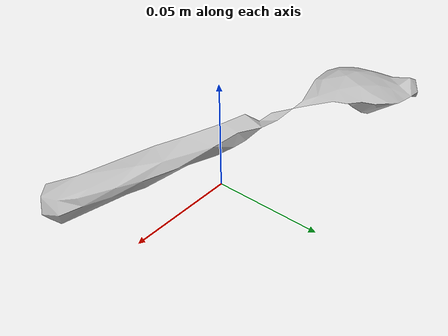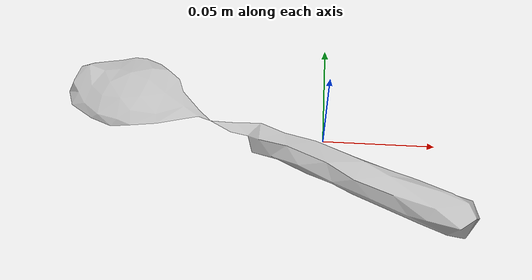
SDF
<?xml version='1.0'?>
<sdf version="1.4">
  <model name="031_spoon">
    <static>false</static>
    <link name="link">
      <inertial>
        <pose>-0.03685764651402424 -0.003809997196939414 0.008894857924024035 -0.4724546448891708 -1.5543969379332983 0.1286894228348995</pose>
        <mass>0.007688344093587778</mass>
        <inertia>
          <ixx>1.9087449471544153e-05</ixx>
          <ixy>1.4418877958849702e-22</ixy>
          <ixz>1.8931685376691785e-22</ixz>
          <iyy>1.8746958755464454e-05</iyy>
          <iyz>6.840428343071304e-21</iyz>
          <izz>6.661787699816911e-07</izz>
        </inertia>
      </inertial>
      <collision name="collision">
        <geometry>
          <mesh>
            <!-- Use a downsampled mesh for collisions -->
            <uri>model:///031_spoon/031_spoon_250_collision.stl</uri>
	        </mesh>
        </geometry>
        <surface>
      </surface>
      </collision>
      <visual name="visual">
        <geometry>
          <mesh>
            <uri>model:///031_spoon/textured.obj</uri>
	        </mesh>
        </geometry>
        <material>
          <script>
            <uri>model:///031_spoon/031_spoon.material</uri>
            <name>031_spoon</name>
          </script>
        </material>
      </visual>
    </link>
  </model>
</sdf>
